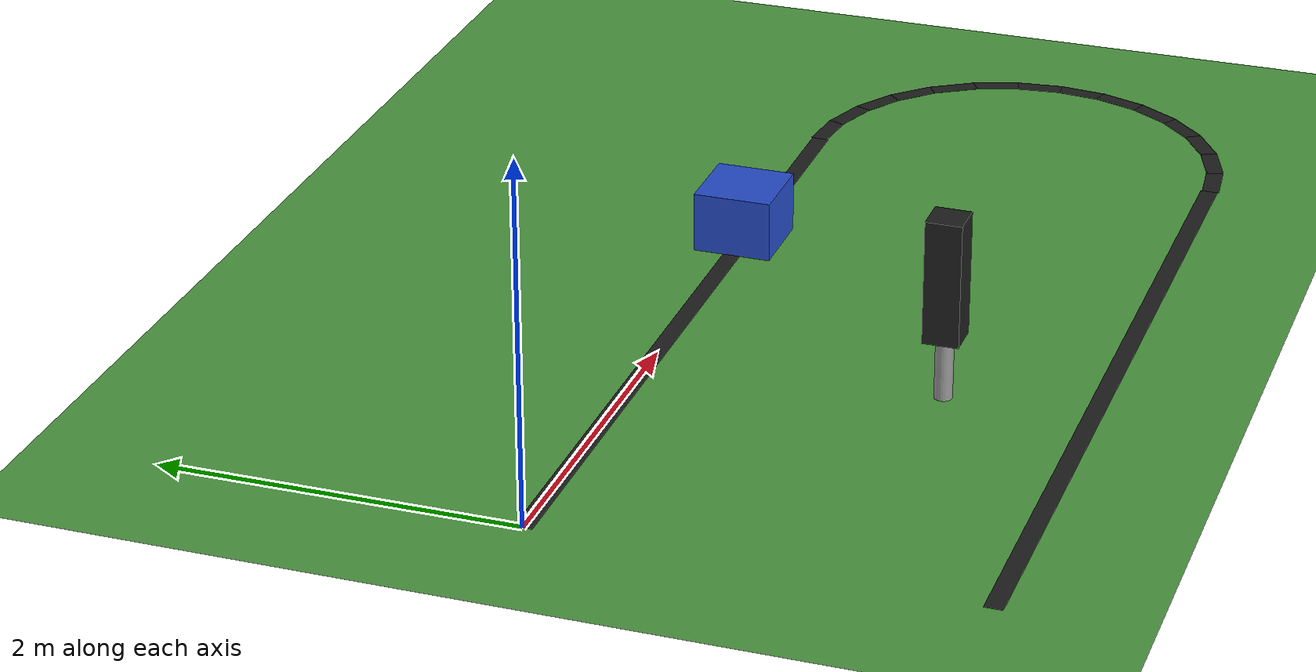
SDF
<sdf version="1.6">
 <world name="u_turn">
  <plugin name="gazebo_ros_state" filename="libgazebo_ros_state.so"/>
  <light type="directional" name="sun">
   <pose>0 0 10 0 0 0</pose>
   <diffuse>0.90 0.82 0.65 1</diffuse>
   <specular>0.25 0.22 0.15 1</specular>
   <attenuation>
    <range>1000</range>
    <constant>0.9</constant>
    <linear>0.01</linear>
    <quadratic>0.001</quadratic>
   </attenuation>
   <direction>-0.7 0.4 -0.55</direction>
  </light>
  <model name="ground_plane">
   <static>true</static>
   <link name="link">
    <collision name="collision">
     <geometry><plane><normal>0 0 1</normal><size>100 100</size></plane></geometry>
     <surface><friction><ode><mu>100</mu><mu2>50</mu2></ode></friction></surface>
    </collision>
    <visual name="visual">
     <cast_shadows>false</cast_shadows>
     <geometry><plane><normal>0 0 1</normal><size>100 100</size></plane></geometry>
     <material>
      <script><uri>file://media/materials/scripts/gazebo.material</uri><name>Gazebo/Grass</name></script>
     </material>
    </visual>
   </link>
  </model>
  <model name="lane_0">
   <static>true</static>
   <link name="link">
    <visual name="visual">
     <geometry><box><size>5.0000 0.1000 0.001</size></box></geometry>
     <material>
      <script><uri>file://media/materials/scripts/gazebo.material</uri><name>Gazebo/FlatBlack</name></script>
     </material>
    </visual>
   </link>
   <pose>2.5000 0.0000 0.0005 0 0 0.0000</pose>
  </model>
  <model name="lane_1">
   <static>true</static>
   <link name="link">
    <visual name="visual">
     <geometry><box><size>0.2827 0.1000 0.001</size></box></geometry>
     <material>
      <script><uri>file://media/materials/scripts/gazebo.material</uri><name>Gazebo/FlatBlack</name></script>
     </material>
    </visual>
   </link>
   <pose>5.1344 -0.0075 0.0005 0 0 3.0294</pose>
  </model>
  <model name="lane_2">
   <static>true</static>
   <link name="link">
    <visual name="visual">
     <geometry><box><size>0.2827 0.1000 0.001</size></box></geometry>
     <material>
      <script><uri>file://media/materials/scripts/gazebo.material</uri><name>Gazebo/FlatBlack</name></script>
     </material>
    </visual>
   </link>
   <pose>5.3963 -0.0673 0.0005 0 0 2.8050</pose>
  </model>
  <model name="lane_3">
   <static>true</static>
   <link name="link">
    <visual name="visual">
     <geometry><box><size>0.2827 0.1000 0.001</size></box></geometry>
     <material>
      <script><uri>file://media/materials/scripts/gazebo.material</uri><name>Gazebo/FlatBlack</name></script>
     </material>
    </visual>
   </link>
   <pose>5.6384 -0.1839 0.0005 0 0 2.5806</pose>
  </model>
  <model name="lane_4">
   <static>true</static>
   <link name="link">
    <visual name="visual">
     <geometry><box><size>0.2827 0.1000 0.001</size></box></geometry>
     <material>
      <script><uri>file://media/materials/scripts/gazebo.material</uri><name>Gazebo/FlatBlack</name></script>
     </material>
    </visual>
   </link>
   <pose>5.8485 -0.3515 0.0005 0 0 2.3562</pose>
  </model>
  <model name="lane_5">
   <static>true</static>
   <link name="link">
    <visual name="visual">
     <geometry><box><size>0.2827 0.1000 0.001</size></box></geometry>
     <material>
      <script><uri>file://media/materials/scripts/gazebo.material</uri><name>Gazebo/FlatBlack</name></script>
     </material>
    </visual>
   </link>
   <pose>6.0161 -0.5616 0.0005 0 0 2.1318</pose>
  </model>
  <model name="lane_6">
   <static>true</static>
   <link name="link">
    <visual name="visual">
     <geometry><box><size>0.2827 0.1000 0.001</size></box></geometry>
     <material>
      <script><uri>file://media/materials/scripts/gazebo.material</uri><name>Gazebo/FlatBlack</name></script>
     </material>
    </visual>
   </link>
   <pose>6.1327 -0.8037 0.0005 0 0 1.9074</pose>
  </model>
  <model name="lane_7">
   <static>true</static>
   <link name="link">
    <visual name="visual">
     <geometry><box><size>0.2827 0.1000 0.001</size></box></geometry>
     <material>
      <script><uri>file://media/materials/scripts/gazebo.material</uri><name>Gazebo/FlatBlack</name></script>
     </material>
    </visual>
   </link>
   <pose>6.1925 -1.0656 0.0005 0 0 1.6830</pose>
  </model>
  <model name="lane_8">
   <static>true</static>
   <link name="link">
    <visual name="visual">
     <geometry><box><size>0.2827 0.1000 0.001</size></box></geometry>
     <material>
      <script><uri>file://media/materials/scripts/gazebo.material</uri><name>Gazebo/FlatBlack</name></script>
     </material>
    </visual>
   </link>
   <pose>6.1925 -1.3344 0.0005 0 0 1.4586</pose>
  </model>
  <model name="lane_9">
   <static>true</static>
   <link name="link">
    <visual name="visual">
     <geometry><box><size>0.2827 0.1000 0.001</size></box></geometry>
     <material>
      <script><uri>file://media/materials/scripts/gazebo.material</uri><name>Gazebo/FlatBlack</name></script>
     </material>
    </visual>
   </link>
   <pose>6.1327 -1.5963 0.0005 0 0 1.2342</pose>
  </model>
  <model name="lane_10">
   <static>true</static>
   <link name="link">
    <visual name="visual">
     <geometry><box><size>0.2827 0.1000 0.001</size></box></geometry>
     <material>
      <script><uri>file://media/materials/scripts/gazebo.material</uri><name>Gazebo/FlatBlack</name></script>
     </material>
    </visual>
   </link>
   <pose>6.0161 -1.8384 0.0005 0 0 1.0098</pose>
  </model>
  <model name="lane_11">
   <static>true</static>
   <link name="link">
    <visual name="visual">
     <geometry><box><size>0.2827 0.1000 0.001</size></box></geometry>
     <material>
      <script><uri>file://media/materials/scripts/gazebo.material</uri><name>Gazebo/FlatBlack</name></script>
     </material>
    </visual>
   </link>
   <pose>5.8485 -2.0485 0.0005 0 0 0.7854</pose>
  </model>
  <model name="lane_12">
   <static>true</static>
   <link name="link">
    <visual name="visual">
     <geometry><box><size>0.2827 0.1000 0.001</size></box></geometry>
     <material>
      <script><uri>file://media/materials/scripts/gazebo.material</uri><name>Gazebo/FlatBlack</name></script>
     </material>
    </visual>
   </link>
   <pose>5.6384 -2.2161 0.0005 0 0 0.5610</pose>
  </model>
  <model name="lane_13">
   <static>true</static>
   <link name="link">
    <visual name="visual">
     <geometry><box><size>0.2827 0.1000 0.001</size></box></geometry>
     <material>
      <script><uri>file://media/materials/scripts/gazebo.material</uri><name>Gazebo/FlatBlack</name></script>
     </material>
    </visual>
   </link>
   <pose>5.3963 -2.3327 0.0005 0 0 0.3366</pose>
  </model>
  <model name="lane_14">
   <static>true</static>
   <link name="link">
    <visual name="visual">
     <geometry><box><size>0.2827 0.1000 0.001</size></box></geometry>
     <material>
      <script><uri>file://media/materials/scripts/gazebo.material</uri><name>Gazebo/FlatBlack</name></script>
     </material>
    </visual>
   </link>
   <pose>5.1344 -2.3925 0.0005 0 0 0.1122</pose>
  </model>
  <model name="lane_15">
   <static>true</static>
   <link name="link">
    <visual name="visual">
     <geometry><box><size>5.0000 0.1000 0.001</size></box></geometry>
     <material>
      <script><uri>file://media/materials/scripts/gazebo.material</uri><name>Gazebo/FlatBlack</name></script>
     </material>
    </visual>
   </link>
   <pose>2.5000 -2.4000 0.0005 0 0 3.1416</pose>
  </model>
  <model name="traffic_light">
   <static>true</static>
   <link name="pole">
    <collision name="collision">
     <geometry><cylinder><radius>0.05</radius><length>0.350</length></cylinder></geometry>
    </collision>
    <visual name="visual">
     <geometry><cylinder><radius>0.05</radius><length>0.350</length></cylinder></geometry>
     <material>
      <script><uri>file://media/materials/scripts/gazebo.material</uri><name>Gazebo/Grey</name></script>
     </material>
    </visual>
    <pose>0 0 0.1750 0 0 0</pose>
   </link>
   <link name="head">
    <collision name="collision"><geometry><box><size>0.200 0.200 0.700</size></box></geometry></collision>
    <visual name="visual">
     <geometry><box><size>0.200 0.200 0.700</size></box></geometry>
     <material>
      <script><uri>file://media/materials/scripts/gazebo.material</uri><name>Gazebo/Black</name></script>
     </material>
    </visual>
    <pose>0 0 0.7000 0 0 0</pose>
   </link>
   <link name="red_light">
    <visual name="visual">
     <geometry><cylinder><radius>0.060</radius><length>0.02</length></cylinder></geometry>
     <material>
      <script><uri>file://media/materials/scripts/gazebo.material</uri><name>Gazebo/Red</name></script>
     </material>
    </visual>
    <pose>0 0.1010 0.9450 1.5708 0 0</pose>
   </link>
   <link name="yellow_light">
    <visual name="visual">
     <geometry><cylinder><radius>0.060</radius><length>0.02</length></cylinder></geometry>
     <material>
      <script><uri>file://media/materials/scripts/gazebo.material</uri><name>Gazebo/Yellow</name></script>
     </material>
    </visual>
    <pose>0 0.1010 0.7000 1.5708 0 0</pose>
   </link>
   <link name="green_light">
    <visual name="visual">
     <geometry><cylinder><radius>0.060</radius><length>0.02</length></cylinder></geometry>
     <material>
      <script><uri>file://media/materials/scripts/gazebo.material</uri><name>Gazebo/Green</name></script>
     </material>
    </visual>
    <pose>0 0.1010 0.4550 1.5708 0 0</pose>
   </link>
   <pose>2.0000 -1.6000 0.0 0 0 -1.5708</pose>
  </model>
  <model name="obstacle_box">
   <static>true</static>
   <link name="link">
    <collision name="collision"><geometry><box><size>0.450 0.450 0.350</size></box></geometry></collision>
    <visual name="visual">
     <geometry><box><size>0.450 0.450 0.350</size></box></geometry>
     <material>
      <script><uri>file://media/materials/scripts/gazebo.material</uri><name>Gazebo/Blue</name></script>
     </material>
    </visual>
   </link>
   <pose>3.5000 0.0000 0.1750 0 0 0</pose>
  </model>
 </world>
</sdf>
